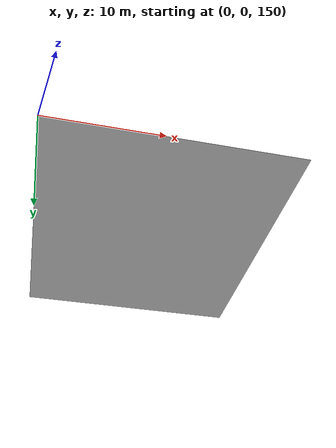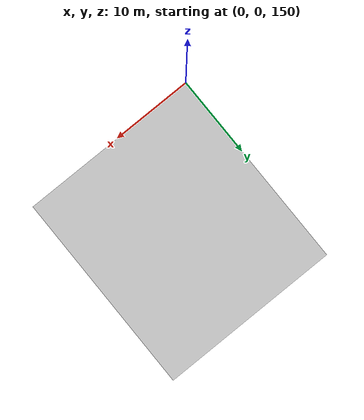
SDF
<?xml version="1.0" ?>
<sdf version="1.10">
    <model name="map2_125_175">
        <link name="map2_125_175_link">
            <visual name="map2_125_175_visual">
                <geometry>
                    <mesh>
                        <uri>meshes/visual/map2_125_175.obj</uri>
                    </mesh>
                </geometry>
            </visual>
            <collision name="map2_125_175_collision">
                <surface>
                    <friction>
                        <ode>
                            <mu>2.316343837943928</mu>
                            <mu2>2.316343837943928</mu2>
                        </ode>
                        <bullet>
                            <friction>2.316343837943928</friction>
                            <friction2>2.316343837943928</friction2>
                        </bullet>
                    </friction>
                </surface>
                <geometry>
                    <mesh>
                        <uri>meshes/visual/map2_125_175.obj</uri>
                    </mesh>
                </geometry>
            </collision>
        </link>
        <static>True</static>
    </model>
</sdf>
